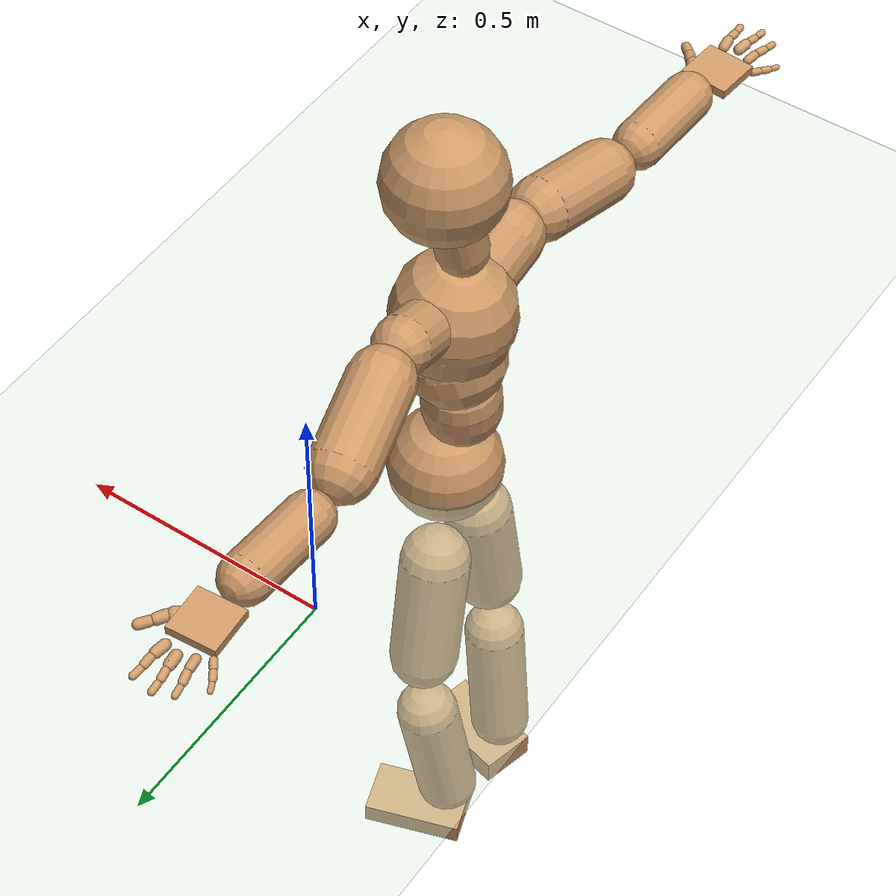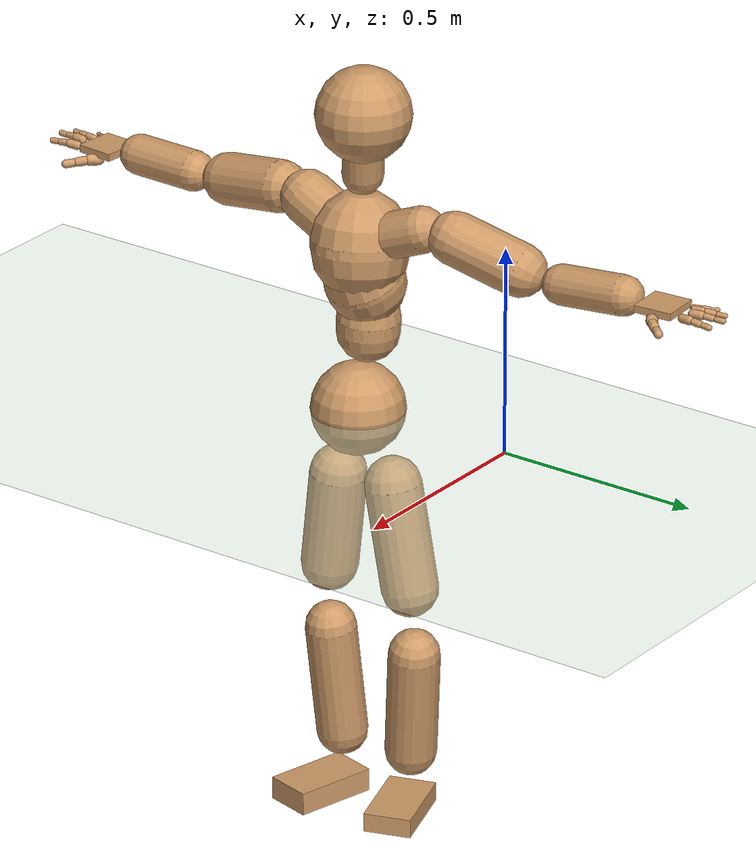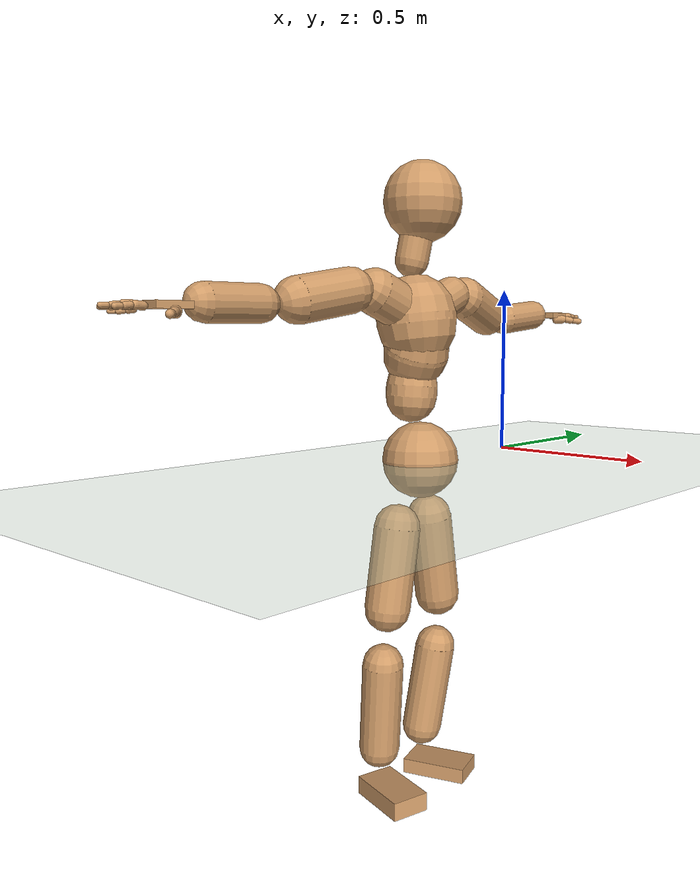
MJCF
<mujoco model="humanoid">
  <compiler coordinate="local" angle="radian"/>
  <default>
    <joint damping="0.0" armature="0.01" stiffness="0.0" limited="true"/>
    <geom conaffinity="1" condim="3" contype="7" margin="0.001" rgba="0.8 0.6 .4 1"/>
  </default>
  <asset>
    <texture type="skybox" builtin="gradient" rgb1=".4 .5 .6" rgb2="0 0 0" width="100" height="100"/>
    <texture builtin="flat" height="1278" mark="cross" markrgb="1 1 1" name="texgeom" random="0.01" rgb1="0.8 0.6 0.4" rgb2="0.8 0.6 0.4" type="cube" width="127"/>
    <texture builtin="checker" height="100" name="texplane" rgb1="0 0 0" rgb2="0.8 0.8 0.8" type="2d" width="100"/>
    <material name="MatPlane" reflectance="0.5" shininess="1" specular="1" texrepeat="60 60" texture="texplane"/>
    <material name="geom" texture="texgeom" texuniform="true"/>
  </asset>
  <worldbody>
    <light cutoff="100" diffuse="1 1 1" dir="-0 0 -1.3" directional="true" exponent="1" pos="0 0 1.3" specular=".1 .1 .1"/>
    <geom conaffinity="1" condim="3" name="floor" pos="0 0 0" rgba="0.8 0.9 0.8 1" size="100 100 .2" type="plane" material="MatPlane"/>
    <body name="Pelvis" pos="0.0012 -0.4081 0.0047">
      <freejoint name="Pelvis"/>
      <geom type="sphere" contype="1" conaffinity="1" density="500" size="0.1114" pos="0.0000 0.0000 0.0000" name="Pelvis"/>
      <body name="L_Hip" pos="-0.0295 0.0615 -0.1012">
        <joint name="L_Hip_x" type="hinge" pos="0 0 0" axis="1 0 0" stiffness="800" damping="80" armature="0.02" range="-180.0000 180.0000"/>
        <joint name="L_Hip_y" type="hinge" pos="0 0 0" axis="0 1 0" stiffness="800" damping="80" armature="0.02" range="-180.0000 180.0000"/>
        <joint name="L_Hip_z" type="hinge" pos="0 0 0" axis="0 0 1" stiffness="800" damping="80" armature="0.02" range="-180.0000 180.0000"/>
        <geom type="capsule" contype="1" conaffinity="1" density="500" fromto="-0.0015 0.0148 -0.0844 -0.0060 0.0593 -0.3377" size="0.0677" name="L_Hip"/>
        <body name="L_Knee" pos="-0.0075 0.0742 -0.4221">
          <joint name="L_Knee_x" type="hinge" pos="0 0 0" axis="1 0 0" stiffness="800" damping="80" armature="0.02" range="-180.0000 180.0000"/>
          <joint name="L_Knee_y" type="hinge" pos="0 0 0" axis="0 1 0" stiffness="800" damping="80" armature="0.02" range="-180.0000 180.0000"/>
          <joint name="L_Knee_z" type="hinge" pos="0 0 0" axis="0 0 1" stiffness="800" damping="80" armature="0.02" range="-180.0000 180.0000"/>
          <geom type="capsule" contype="1" conaffinity="1" density="500" fromto="-0.0098 -0.0102 -0.0896 -0.0394 -0.0407 -0.3582" size="0.0615" name="L_Knee"/>
          <body name="L_Ankle" pos="-0.0492 -0.0509 -0.4478">
            <joint name="L_Ankle_x" type="hinge" pos="0 0 0" axis="1 0 0" stiffness="800" damping="80" armature="0.02" range="-180.0000 180.0000"/>
            <joint name="L_Ankle_y" type="hinge" pos="0 0 0" axis="0 1 0" stiffness="800" damping="80" armature="0.02" range="-180.0000 180.0000"/>
            <joint name="L_Ankle_z" type="hinge" pos="0 0 0" axis="0 0 1" stiffness="800" damping="80" armature="0.02" range="-180.0000 180.0000"/>
            <geom type="box" contype="1" conaffinity="1" density="500" pos="0.0721 0.0240 -0.0319" size="0.1006 0.0572 0.023" quat="0.9871 0.0000 0.0000 0.1601" name="L_Ankle"/>
            <body name="L_Toe" pos="0.1443 0.048 -0.0637">
              <joint name="L_Toe_x" type="hinge" pos="0 0 0" axis="1 0 0" stiffness="500" damping="50" armature="0.02" range="-180.0000 180.0000"/>
              <joint name="L_Toe_y" type="hinge" pos="0 0 0" axis="0 1 0" stiffness="500" damping="50" armature="0.02" range="-180.0000 180.0000"/>
              <joint name="L_Toe_z" type="hinge" pos="0 0 0" axis="0 0 1" stiffness="500" damping="50" armature="0.02" range="-180.0000 180.0000"/>
              <geom type="box" contype="1" conaffinity="1" density="500" pos="0.0000 0.0000 0.0317" size="0.0011 0.0027 0.0011" quat="0.9864 0.0000 0.0000 0.1641" name="L_Toe"/>
            </body>
          </body>
        </body>
      </body>
      <body name="R_Hip" pos="-0.0209 -0.0639 -0.1122">
        <joint name="R_Hip_x" type="hinge" pos="0 0 0" axis="1 0 0" stiffness="800" damping="80" armature="0.02" range="-180.0000 180.0000"/>
        <joint name="R_Hip_y" type="hinge" pos="0 0 0" axis="0 1 0" stiffness="800" damping="80" armature="0.02" range="-180.0000 180.0000"/>
        <joint name="R_Hip_z" type="hinge" pos="0 0 0" axis="0 0 1" stiffness="800" damping="80" armature="0.02" range="-180.0000 180.0000"/>
        <geom type="capsule" contype="1" conaffinity="1" density="500" fromto="-0.0033 -0.0110 -0.0808 -0.0133 -0.0442 -0.3233" size="0.0677" name="R_Hip"/>
        <body name="R_Knee" pos="-0.0167 -0.0552 -0.4042">
          <joint name="R_Knee_x" type="hinge" pos="0 0 0" axis="1 0 0" stiffness="800" damping="80" armature="0.02" range="-180.0000 180.0000"/>
          <joint name="R_Knee_y" type="hinge" pos="0 0 0" axis="0 1 0" stiffness="800" damping="80" armature="0.02" range="-180.0000 180.0000"/>
          <joint name="R_Knee_z" type="hinge" pos="0 0 0" axis="0 0 1" stiffness="800" damping="80" armature="0.02" range="-180.0000 180.0000"/>
          <geom type="capsule" contype="1" conaffinity="1" density="500" fromto="-0.0096 0.0038 -0.0925 -0.0384 0.0153 -0.3698" size="0.0614" name="R_Knee"/>
          <body name="R_Ankle" pos="-0.048 0.0191 -0.4623">
            <joint name="R_Ankle_x" type="hinge" pos="0 0 0" axis="1 0 0" stiffness="800" damping="80" armature="0.02" range="-180.0000 180.0000"/>
            <joint name="R_Ankle_y" type="hinge" pos="0 0 0" axis="0 1 0" stiffness="800" damping="80" armature="0.02" range="-180.0000 180.0000"/>
            <joint name="R_Ankle_z" type="hinge" pos="0 0 0" axis="0 0 1" stiffness="800" damping="80" armature="0.02" range="-180.0000 180.0000"/>
            <geom type="box" contype="1" conaffinity="1" density="500" pos="0.0755 -0.0188 -0.0313" size="0.1006 0.0572 0.0278" quat="0.9926 0.0000 0.0000 -0.1214" name="R_Ankle"/>
            <body name="R_Toe" pos="0.1511 -0.0375 -0.0625">
              <joint name="R_Toe_x" type="hinge" pos="0 0 0" axis="1 0 0" stiffness="500" damping="50" armature="0.02" range="-180.0000 180.0000"/>
              <joint name="R_Toe_y" type="hinge" pos="0 0 0" axis="0 1 0" stiffness="500" damping="50" armature="0.02" range="-180.0000 180.0000"/>
              <joint name="R_Toe_z" type="hinge" pos="0 0 0" axis="0 0 1" stiffness="500" damping="50" armature="0.02" range="-180.0000 180.0000"/>
              <geom type="box" contype="1" conaffinity="1" density="500" pos="0.0000 0.0000 0.0263" size="0.0011 0.0027 0.0011" quat="0.9935 0.0000 0.0000 -0.1138" name="R_Toe"/>
            </body>
          </body>
        </body>
      </body>
      <body name="Torso" pos="-0.0377 -0.0024 0.1174">
        <joint name="Torso_x" type="hinge" pos="0 0 0" axis="1 0 0" stiffness="1000" damping="100" armature="0.02" range="-180.0000 180.0000"/>
        <joint name="Torso_y" type="hinge" pos="0 0 0" axis="0 1 0" stiffness="1000" damping="100" armature="0.02" range="-180.0000 180.0000"/>
        <joint name="Torso_z" type="hinge" pos="0 0 0" axis="0 0 1" stiffness="1000" damping="100" armature="0.02" range="-180.0000 180.0000"/>
        <geom type="capsule" contype="1" conaffinity="1" density="500" fromto="0.0028 0.0067 0.0974 0.0019 0.0045 0.0649" size="0.075" name="Torso"/>
        <body name="Spine" pos="0.0046 0.0112 0.1624">
          <joint name="Spine_x" type="hinge" pos="0 0 0" axis="1 0 0" stiffness="1000" damping="100" armature="0.02" range="-180.0000 180.0000"/>
          <joint name="Spine_y" type="hinge" pos="0 0 0" axis="0 1 0" stiffness="1000" damping="100" armature="0.02" range="-180.0000 180.0000"/>
          <joint name="Spine_z" type="hinge" pos="0 0 0" axis="0 0 1" stiffness="1000" damping="100" armature="0.02" range="-180.0000 180.0000"/>
          <geom type="capsule" contype="1" conaffinity="1" density="500" fromto="0.0166 -0.0049 0.0384 0.0110 -0.0033 0.0256" size="0.0951" name="Spine"/>
          <body name="Chest" pos="0.0276 -0.0082 0.064">
            <joint name="Chest_x" type="hinge" pos="0 0 0" axis="1 0 0" stiffness="1000" damping="100" armature="0.02" range="-180.0000 180.0000"/>
            <joint name="Chest_y" type="hinge" pos="0 0 0" axis="0 1 0" stiffness="1000" damping="100" armature="0.02" range="-180.0000 180.0000"/>
            <joint name="Chest_z" type="hinge" pos="0 0 0" axis="0 0 1" stiffness="1000" damping="100" armature="0.02" range="-180.0000 180.0000"/>
            <geom type="capsule" contype="1" conaffinity="1" density="500" fromto="-0.0071 -0.0032 0.0700 -0.0047 -0.0021 0.0467" size="0.1154" name="Chest"/>
            <body name="Neck" pos="-0.0263 -0.0108 0.1829">
              <joint name="Neck_x" type="hinge" pos="0 0 0" axis="1 0 0" stiffness="500" damping="50" armature="0.02" range="-180.0000 180.0000"/>
              <joint name="Neck_y" type="hinge" pos="0 0 0" axis="0 1 0" stiffness="500" damping="50" armature="0.02" range="-180.0000 180.0000"/>
              <joint name="Neck_z" type="hinge" pos="0 0 0" axis="0 0 1" stiffness="500" damping="50" armature="0.02" range="-180.0000 180.0000"/>
              <geom type="capsule" contype="1" conaffinity="1" density="500" fromto="0.0059 0.0049 0.0396 0.0237 0.0196 0.1585" size="0.0481" name="Neck"/>
              <body name="Head" pos="0.0296 0.0245 0.1981">
                <joint name="Head_x" type="hinge" pos="0 0 0" axis="1 0 0" stiffness="500" damping="50" armature="0.02" range="-180.0000 180.0000"/>
                <joint name="Head_y" type="hinge" pos="0 0 0" axis="0 1 0" stiffness="500" damping="50" armature="0.02" range="-180.0000 180.0000"/>
                <joint name="Head_z" type="hinge" pos="0 0 0" axis="0 0 1" stiffness="500" damping="50" armature="0.02" range="-180.0000 180.0000"/>
                <geom type="sphere" contype="1" conaffinity="1" density="500" size="0.1116" pos="0.0000 0.0000 0.0000" name="Head"/>
              </body>
            </body>
            <body name="L_Thorax" pos="-0.0028 0.0438 0.0833">
              <joint name="L_Thorax_x" type="hinge" pos="0 0 0" axis="1 0 0" stiffness="500" damping="50" armature="0.02" range="-180.0000 180.0000"/>
              <joint name="L_Thorax_y" type="hinge" pos="0 0 0" axis="0 1 0" stiffness="500" damping="50" armature="0.02" range="-180.0000 180.0000"/>
              <joint name="L_Thorax_z" type="hinge" pos="0 0 0" axis="0 0 1" stiffness="500" damping="50" armature="0.02" range="-180.0000 180.0000"/>
              <geom type="capsule" contype="1" conaffinity="1" density="500" fromto="-0.0030 0.0296 0.0118 -0.0120 0.1186 0.0470" size="0.0551" name="L_Thorax"/>
              <body name="L_Shoulder" pos="-0.015 0.1482 0.0588">
                <joint name="L_Shoulder_x" type="hinge" pos="0 0 0" axis="1 0 0" stiffness="500" damping="50" armature="0.02" range="-180.0000 180.0000"/>
                <joint name="L_Shoulder_y" type="hinge" pos="0 0 0" axis="0 1 0" stiffness="500" damping="50" armature="0.02" range="-180.0000 180.0000"/>
                <joint name="L_Shoulder_z" type="hinge" pos="0 0 0" axis="0 0 1" stiffness="500" damping="50" armature="0.02" range="-180.0000 180.0000"/>
                <geom type="capsule" contype="1" conaffinity="1" density="500" fromto="-0.0109 0.0522 -0.0166 -0.0436 0.2088 -0.0666" size="0.0625" name="L_Shoulder"/>
                <body name="L_Elbow" pos="-0.0546 0.261 -0.0832">
                  <joint name="L_Elbow_x" type="hinge" pos="0 0 0" axis="1 0 0" stiffness="500" damping="50" armature="0.02" range="-720.0000 720.0000"/>
                  <joint name="L_Elbow_y" type="hinge" pos="0 0 0" axis="0 1 0" stiffness="500" damping="50" armature="0.02" range="-720.0000 720.0000"/>
                  <joint name="L_Elbow_z" type="hinge" pos="0 0 0" axis="0 0 1" stiffness="500" damping="50" armature="0.02" range="-720.0000 720.0000"/>
                  <geom type="capsule" contype="1" conaffinity="1" density="500" fromto="0.0005 0.0553 0.0056 0.0019 0.2213 0.0223" size="0.0474" name="L_Elbow"/>
                  <body name="L_Wrist" pos="0.0024 0.2766 0.0279">
                    <joint name="L_Wrist_x" type="hinge" pos="0 0 0" axis="1 0 0" stiffness="300" damping="30" armature="0.02" range="-180.0000 180.0000"/>
                    <joint name="L_Wrist_y" type="hinge" pos="0 0 0" axis="0 1 0" stiffness="300" damping="30" armature="0.02" range="-180.0000 180.0000"/>
                    <joint name="L_Wrist_z" type="hinge" pos="0 0 0" axis="0 0 1" stiffness="300" damping="30" armature="0.02" range="-180.0000 180.0000"/>
                    <geom type="box" contype="1" conaffinity="1" density="500" pos="-0.0034 0.0471 -0.0057" size="0.0464 0.0472 0.0088" quat="0.7322 0.0000 0.0000 -0.6811" name="L_Wrist"/>
                    <body name="L_Index1" pos="0.0225 0.1109 -0.0083">
                      <joint name="L_Index1_x" type="hinge" pos="0 0 0" axis="1 0 0" stiffness="100" damping="10" armature="0.02" range="-180.0000 180.0000"/>
                      <joint name="L_Index1_y" type="hinge" pos="0 0 0" axis="0 1 0" stiffness="100" damping="10" armature="0.02" range="-180.0000 180.0000"/>
                      <joint name="L_Index1_z" type="hinge" pos="0 0 0" axis="0 0 1" stiffness="100" damping="10" armature="0.02" range="-180.0000 180.0000"/>
                      <geom type="capsule" contype="1" conaffinity="1" density="500" fromto="0.0008 0.0069 0.0004 0.0033 0.0278 0.0016" size="0.0103" name="L_Index1"/>
                      <body name="L_Index2" pos="0.0041 0.0347 0.002">
                        <joint name="L_Index2_x" type="hinge" pos="0 0 0" axis="1 0 0" stiffness="100" damping="10" armature="0.02" range="-180.0000 180.0000"/>
                        <joint name="L_Index2_y" type="hinge" pos="0 0 0" axis="0 1 0" stiffness="100" damping="10" armature="0.02" range="-180.0000 180.0000"/>
                        <joint name="L_Index2_z" type="hinge" pos="0 0 0" axis="0 0 1" stiffness="100" damping="10" armature="0.02" range="-180.0000 180.0000"/>
                        <geom type="capsule" contype="1" conaffinity="1" density="500" fromto="-0.0000 0.0049 -0.0006 -0.0000 0.0195 -0.0023" size="0.0083" name="L_Index2"/>
                        <body name="L_Index3" pos="0 0.0244 -0.0029">
                          <joint name="L_Index3_x" type="hinge" pos="0 0 0" axis="1 0 0" stiffness="100" damping="10" armature="0.02" range="-180.0000 180.0000"/>
                          <joint name="L_Index3_y" type="hinge" pos="0 0 0" axis="0 1 0" stiffness="100" damping="10" armature="0.02" range="-180.0000 180.0000"/>
                          <joint name="L_Index3_z" type="hinge" pos="0 0 0" axis="0 0 1" stiffness="100" damping="10" armature="0.02" range="-180.0000 180.0000"/>
                          <geom type="capsule" contype="1" conaffinity="1" density="500" fromto="0.0004 0.0053 -0.0002 0.0016 0.0211 -0.0007" size="0.0071" name="L_Index3"/>
                        </body>
                      </body>
                    </body>
                    <body name="L_Middle1" pos="-0.0042 0.1192 -0.005">
                      <joint name="L_Middle1_x" type="hinge" pos="0 0 0" axis="1 0 0" stiffness="100" damping="10" armature="0.02" range="-180.0000 180.0000"/>
                      <joint name="L_Middle1_y" type="hinge" pos="0 0 0" axis="0 1 0" stiffness="100" damping="10" armature="0.02" range="-180.0000 180.0000"/>
                      <joint name="L_Middle1_z" type="hinge" pos="0 0 0" axis="0 0 1" stiffness="100" damping="10" armature="0.02" range="-180.0000 180.0000"/>
                      <geom type="capsule" contype="1" conaffinity="1" density="500" fromto="-0.0009 0.0066 0.0001 -0.0036 0.0264 0.0005" size="0.0105" name="L_Middle1"/>
                      <body name="L_Middle2" pos="-0.0045 0.033 0.0007">
                        <joint name="L_Middle2_x" type="hinge" pos="0 0 0" axis="1 0 0" stiffness="100" damping="10" armature="0.02" range="-180.0000 180.0000"/>
                        <joint name="L_Middle2_y" type="hinge" pos="0 0 0" axis="0 1 0" stiffness="100" damping="10" armature="0.02" range="-180.0000 180.0000"/>
                        <joint name="L_Middle2_z" type="hinge" pos="0 0 0" axis="0 0 1" stiffness="100" damping="10" armature="0.02" range="-180.0000 180.0000"/>
                        <geom type="capsule" contype="1" conaffinity="1" density="500" fromto="-0.0009 0.0051 -0.0005 -0.0036 0.0202 -0.0021" size="0.0077" name="L_Middle2"/>
                        <body name="L_Middle3" pos="-0.0045 0.0253 -0.0027">
                          <joint name="L_Middle3_x" type="hinge" pos="0 0 0" axis="1 0 0" stiffness="100" damping="10" armature="0.02" range="-180.0000 180.0000"/>
                          <joint name="L_Middle3_y" type="hinge" pos="0 0 0" axis="0 1 0" stiffness="100" damping="10" armature="0.02" range="-180.0000 180.0000"/>
                          <joint name="L_Middle3_z" type="hinge" pos="0 0 0" axis="0 0 1" stiffness="100" damping="10" armature="0.02" range="-180.0000 180.0000"/>
                          <geom type="capsule" contype="1" conaffinity="1" density="500" fromto="-0.0005 0.0055 -0.0001 -0.0020 0.0218 -0.0005" size="0.0067" name="L_Middle3"/>
                        </body>
                      </body>
                    </body>
                    <body name="L_Pinky1" pos="-0.0507 0.0915 -0.0145">
                      <joint name="L_Pinky1_x" type="hinge" pos="0 0 0" axis="1 0 0" stiffness="100" damping="10" armature="0.02" range="-180.0000 180.0000"/>
                      <joint name="L_Pinky1_y" type="hinge" pos="0 0 0" axis="0 1 0" stiffness="100" damping="10" armature="0.02" range="-180.0000 180.0000"/>
                      <joint name="L_Pinky1_z" type="hinge" pos="0 0 0" axis="0 0 1" stiffness="100" damping="10" armature="0.02" range="-180.0000 180.0000"/>
                      <geom type="capsule" contype="1" conaffinity="1" density="500" fromto="-0.0025 0.0035 -0.0004 -0.0099 0.0140 -0.0016" size="0.0074" name="L_Pinky1"/>
                      <body name="L_Pinky2" pos="-0.0124 0.0174 -0.002">
                        <joint name="L_Pinky2_x" type="hinge" pos="0 0 0" axis="1 0 0" stiffness="100" damping="10" armature="0.02" range="-180.0000 180.0000"/>
                        <joint name="L_Pinky2_y" type="hinge" pos="0 0 0" axis="0 1 0" stiffness="100" damping="10" armature="0.02" range="-180.0000 180.0000"/>
                        <joint name="L_Pinky2_z" type="hinge" pos="0 0 0" axis="0 0 1" stiffness="100" damping="10" armature="0.02" range="-180.0000 180.0000"/>
                        <geom type="capsule" contype="1" conaffinity="1" density="500" fromto="-0.0023 0.0034 -0.0004 -0.0092 0.0138 -0.0018" size="0.007" name="L_Pinky2"/>
                        <body name="L_Pinky3" pos="-0.0115 0.0172 -0.0022">
                          <joint name="L_Pinky3_x" type="hinge" pos="0 0 0" axis="1 0 0" stiffness="100" damping="10" armature="0.02" range="-180.0000 180.0000"/>
                          <joint name="L_Pinky3_y" type="hinge" pos="0 0 0" axis="0 1 0" stiffness="100" damping="10" armature="0.02" range="-180.0000 180.0000"/>
                          <joint name="L_Pinky3_z" type="hinge" pos="0 0 0" axis="0 0 1" stiffness="100" damping="10" armature="0.02" range="-180.0000 180.0000"/>
                          <geom type="capsule" contype="1" conaffinity="1" density="500" fromto="-0.0019 0.0038 -0.0000 -0.0076 0.0154 -0.0002" size="0.0053" name="L_Pinky3"/>
                        </body>
                      </body>
                    </body>
                    <body name="L_Ring1" pos="-0.0315 0.1062 -0.0081">
                      <joint name="L_Ring1_x" type="hinge" pos="0 0 0" axis="1 0 0" stiffness="100" damping="10" armature="0.02" range="-180.0000 180.0000"/>
                      <joint name="L_Ring1_y" type="hinge" pos="0 0 0" axis="0 1 0" stiffness="100" damping="10" armature="0.02" range="-180.0000 180.0000"/>
                      <joint name="L_Ring1_z" type="hinge" pos="0 0 0" axis="0 0 1" stiffness="100" damping="10" armature="0.02" range="-180.0000 180.0000"/>
                      <geom type="capsule" contype="1" conaffinity="1" density="500" fromto="-0.0010 0.0062 0.0002 -0.0040 0.0246 0.0007" size="0.0089" name="L_Ring1"/>
                      <body name="L_Ring2" pos="-0.005 0.0308 0.0008">
                        <joint name="L_Ring2_x" type="hinge" pos="0 0 0" axis="1 0 0" stiffness="100" damping="10" armature="0.02" range="-180.0000 180.0000"/>
                        <joint name="L_Ring2_y" type="hinge" pos="0 0 0" axis="0 1 0" stiffness="100" damping="10" armature="0.02" range="-180.0000 180.0000"/>
                        <joint name="L_Ring2_z" type="hinge" pos="0 0 0" axis="0 0 1" stiffness="100" damping="10" armature="0.02" range="-180.0000 180.0000"/>
                        <geom type="capsule" contype="1" conaffinity="1" density="500" fromto="-0.0014 0.0050 -0.0005 -0.0056 0.0199 -0.0020" size="0.0081" name="L_Ring2"/>
                        <body name="L_Ring3" pos="-0.007 0.0248 -0.0025">
                          <joint name="L_Ring3_x" type="hinge" pos="0 0 0" axis="1 0 0" stiffness="100" damping="10" armature="0.02" range="-180.0000 180.0000"/>
                          <joint name="L_Ring3_y" type="hinge" pos="0 0 0" axis="0 1 0" stiffness="100" damping="10" armature="0.02" range="-180.0000 180.0000"/>
                          <joint name="L_Ring3_z" type="hinge" pos="0 0 0" axis="0 0 1" stiffness="100" damping="10" armature="0.02" range="-180.0000 180.0000"/>
                          <geom type="capsule" contype="1" conaffinity="1" density="500" fromto="-0.0010 0.0054 -0.0001 -0.0040 0.0215 -0.0004" size="0.0063" name="L_Ring3"/>
                        </body>
                      </body>
                    </body>
                    <body name="L_Thumb1" pos="0.0298 0.0427 -0.0214">
                      <joint name="L_Thumb1_x" type="hinge" pos="0 0 0" axis="1 0 0" stiffness="100" damping="10" armature="0.02" range="-180.0000 180.0000"/>
                      <joint name="L_Thumb1_y" type="hinge" pos="0 0 0" axis="0 1 0" stiffness="100" damping="10" armature="0.02" range="-180.0000 180.0000"/>
                      <joint name="L_Thumb1_z" type="hinge" pos="0 0 0" axis="0 0 1" stiffness="100" damping="10" armature="0.02" range="-180.0000 180.0000"/>
                      <geom type="capsule" contype="1" conaffinity="1" density="500" fromto="0.0058 0.0035 0.0005 0.0233 0.0141 0.0020" size="0.014" name="L_Thumb1"/>
                      <body name="L_Thumb2" pos="0.0291 0.0176 0.0024">
                        <joint name="L_Thumb2_x" type="hinge" pos="0 0 0" axis="1 0 0" stiffness="100" damping="10" armature="0.02" range="-180.0000 180.0000"/>
                        <joint name="L_Thumb2_y" type="hinge" pos="0 0 0" axis="0 1 0" stiffness="100" damping="10" armature="0.02" range="-180.0000 180.0000"/>
                        <joint name="L_Thumb2_z" type="hinge" pos="0 0 0" axis="0 0 1" stiffness="100" damping="10" armature="0.02" range="-180.0000 180.0000"/>
                        <geom type="capsule" contype="1" conaffinity="1" density="500" fromto="0.0035 0.0044 -0.0010 0.0142 0.0175 -0.0040" size="0.0111" name="L_Thumb2"/>
                        <body name="L_Thumb3" pos="0.0177 0.0218 -0.005">
                          <joint name="L_Thumb3_x" type="hinge" pos="0 0 0" axis="1 0 0" stiffness="100" damping="10" armature="0.02" range="-180.0000 180.0000"/>
                          <joint name="L_Thumb3_y" type="hinge" pos="0 0 0" axis="0 1 0" stiffness="100" damping="10" armature="0.02" range="-180.0000 180.0000"/>
                          <joint name="L_Thumb3_z" type="hinge" pos="0 0 0" axis="0 0 1" stiffness="100" damping="10" armature="0.02" range="-180.0000 180.0000"/>
                          <geom type="capsule" contype="1" conaffinity="1" density="500" fromto="0.0039 0.0048 -0.0006 0.0158 0.0191 -0.0024" size="0.0098" name="L_Thumb3"/>
                        </body>
                      </body>
                    </body>
                  </body>
                </body>
              </body>
            </body>
            <body name="R_Thorax" pos="-0.0063 -0.049 0.0837">
              <joint name="R_Thorax_x" type="hinge" pos="0 0 0" axis="1 0 0" stiffness="500" damping="50" armature="0.02" range="-180.0000 180.0000"/>
              <joint name="R_Thorax_y" type="hinge" pos="0 0 0" axis="0 1 0" stiffness="500" damping="50" armature="0.02" range="-180.0000 180.0000"/>
              <joint name="R_Thorax_z" type="hinge" pos="0 0 0" axis="0 0 1" stiffness="500" damping="50" armature="0.02" range="-180.0000 180.0000"/>
              <geom type="capsule" contype="1" conaffinity="1" density="500" fromto="-0.0028 -0.0274 0.0117 -0.0112 -0.1097 0.0467" size="0.0645" name="R_Thorax"/>
              <body name="R_Shoulder" pos="-0.014 -0.1372 0.0583">
                <joint name="R_Shoulder_x" type="hinge" pos="0 0 0" axis="1 0 0" stiffness="500" damping="50" armature="0.02" range="-180.0000 180.0000"/>
                <joint name="R_Shoulder_y" type="hinge" pos="0 0 0" axis="0 1 0" stiffness="500" damping="50" armature="0.02" range="-180.0000 180.0000"/>
                <joint name="R_Shoulder_z" type="hinge" pos="0 0 0" axis="0 0 1" stiffness="500" damping="50" armature="0.02" range="-180.0000 180.0000"/>
                <geom type="capsule" contype="1" conaffinity="1" density="500" fromto="-0.0077 -0.0558 -0.0099 -0.0306 -0.2231 -0.0397" size="0.0618" name="R_Shoulder"/>
                <body name="R_Elbow" pos="-0.0383 -0.2789 -0.0496">
                  <joint name="R_Elbow_x" type="hinge" pos="0 0 0" axis="1 0 0" stiffness="500" damping="50" armature="0.02" range="-720.0000 720.0000"/>
                  <joint name="R_Elbow_y" type="hinge" pos="0 0 0" axis="0 1 0" stiffness="500" damping="50" armature="0.02" range="-720.0000 720.0000"/>
                  <joint name="R_Elbow_z" type="hinge" pos="0 0 0" axis="0 0 1" stiffness="500" damping="50" armature="0.02" range="-720.0000 720.0000"/>
                  <geom type="capsule" contype="1" conaffinity="1" density="500" fromto="-0.0021 -0.0538 -0.0004 -0.0084 -0.2151 -0.0014" size="0.0485" name="R_Elbow"/>
                  <body name="R_Wrist" pos="-0.0105 -0.2689 -0.0018">
                    <joint name="R_Wrist_x" type="hinge" pos="0 0 0" axis="1 0 0" stiffness="300" damping="30" armature="0.02" range="-180.0000 180.0000"/>
                    <joint name="R_Wrist_y" type="hinge" pos="0 0 0" axis="0 1 0" stiffness="300" damping="30" armature="0.02" range="-180.0000 180.0000"/>
                    <joint name="R_Wrist_z" type="hinge" pos="0 0 0" axis="0 0 1" stiffness="300" damping="30" armature="0.02" range="-180.0000 180.0000"/>
                    <geom type="box" contype="1" conaffinity="1" density="500" pos="-0.0038 -0.0467 -0.0077" size="0.0464 0.0484 0.009" quat="0.7352 0.0000 0.0000 0.6779" name="R_Wrist"/>
                    <body name="R_Index1" pos="0.0217 -0.1102 -0.0122">
                      <joint name="R_Index1_x" type="hinge" pos="0 0 0" axis="1 0 0" stiffness="100" damping="10" armature="0.02" range="-180.0000 180.0000"/>
                      <joint name="R_Index1_y" type="hinge" pos="0 0 0" axis="0 1 0" stiffness="100" damping="10" armature="0.02" range="-180.0000 180.0000"/>
                      <joint name="R_Index1_z" type="hinge" pos="0 0 0" axis="0 0 1" stiffness="100" damping="10" armature="0.02" range="-180.0000 180.0000"/>
                      <geom type="capsule" contype="1" conaffinity="1" density="500" fromto="0.0008 -0.0069 0.0004 0.0033 -0.0278 0.0016" size="0.0103" name="R_Index1"/>
                      <body name="R_Index2" pos="0.0041 -0.0347 0.002">
                        <joint name="R_Index2_x" type="hinge" pos="0 0 0" axis="1 0 0" stiffness="100" damping="10" armature="0.02" range="-180.0000 180.0000"/>
                        <joint name="R_Index2_y" type="hinge" pos="0 0 0" axis="0 1 0" stiffness="100" damping="10" armature="0.02" range="-180.0000 180.0000"/>
                        <joint name="R_Index2_z" type="hinge" pos="0 0 0" axis="0 0 1" stiffness="100" damping="10" armature="0.02" range="-180.0000 180.0000"/>
                        <geom type="capsule" contype="1" conaffinity="1" density="500" fromto="-0.0000 -0.0049 -0.0006 -0.0000 -0.0195 -0.0023" size="0.0083" name="R_Index2"/>
                        <body name="R_Index3" pos="0 -0.0244 -0.0029">
                          <joint name="R_Index3_x" type="hinge" pos="0 0 0" axis="1 0 0" stiffness="100" damping="10" armature="0.02" range="-180.0000 180.0000"/>
                          <joint name="R_Index3_y" type="hinge" pos="0 0 0" axis="0 1 0" stiffness="100" damping="10" armature="0.02" range="-180.0000 180.0000"/>
                          <joint name="R_Index3_z" type="hinge" pos="0 0 0" axis="0 0 1" stiffness="100" damping="10" armature="0.02" range="-180.0000 180.0000"/>
                          <geom type="capsule" contype="1" conaffinity="1" density="500" fromto="0.0004 -0.0045 -0.0002 0.0016 -0.0179 -0.0007" size="0.0074" name="R_Index3"/>
                        </body>
                      </body>
                    </body>
                    <body name="R_Middle1" pos="-0.005 -0.1186 -0.0089">
                      <joint name="R_Middle1_x" type="hinge" pos="0 0 0" axis="1 0 0" stiffness="100" damping="10" armature="0.02" range="-180.0000 180.0000"/>
                      <joint name="R_Middle1_y" type="hinge" pos="0 0 0" axis="0 1 0" stiffness="100" damping="10" armature="0.02" range="-180.0000 180.0000"/>
                      <joint name="R_Middle1_z" type="hinge" pos="0 0 0" axis="0 0 1" stiffness="100" damping="10" armature="0.02" range="-180.0000 180.0000"/>
                      <geom type="capsule" contype="1" conaffinity="1" density="500" fromto="-0.0009 -0.0066 0.0001 -0.0036 -0.0264 0.0005" size="0.0105" name="R_Middle1"/>
                      <body name="R_Middle2" pos="-0.0045 -0.033 0.0007">
                        <joint name="R_Middle2_x" type="hinge" pos="0 0 0" axis="1 0 0" stiffness="100" damping="10" armature="0.02" range="-180.0000 180.0000"/>
                        <joint name="R_Middle2_y" type="hinge" pos="0 0 0" axis="0 1 0" stiffness="100" damping="10" armature="0.02" range="-180.0000 180.0000"/>
                        <joint name="R_Middle2_z" type="hinge" pos="0 0 0" axis="0 0 1" stiffness="100" damping="10" armature="0.02" range="-180.0000 180.0000"/>
                        <geom type="capsule" contype="1" conaffinity="1" density="500" fromto="-0.0009 -0.0051 -0.0005 -0.0036 -0.0202 -0.0021" size="0.0077" name="R_Middle2"/>
                        <body name="R_Middle3" pos="-0.0045 -0.0253 -0.0027">
                          <joint name="R_Middle3_x" type="hinge" pos="0 0 0" axis="1 0 0" stiffness="100" damping="10" armature="0.02" range="-180.0000 180.0000"/>
                          <joint name="R_Middle3_y" type="hinge" pos="0 0 0" axis="0 1 0" stiffness="100" damping="10" armature="0.02" range="-180.0000 180.0000"/>
                          <joint name="R_Middle3_z" type="hinge" pos="0 0 0" axis="0 0 1" stiffness="100" damping="10" armature="0.02" range="-180.0000 180.0000"/>
                          <geom type="capsule" contype="1" conaffinity="1" density="500" fromto="-0.0005 -0.0047 -0.0001 -0.0020 -0.0186 -0.0005" size="0.007" name="R_Middle3"/>
                        </body>
                      </body>
                    </body>
                    <body name="R_Pinky1" pos="-0.0515 -0.0908 -0.0184">
                      <joint name="R_Pinky1_x" type="hinge" pos="0 0 0" axis="1 0 0" stiffness="100" damping="10" armature="0.02" range="-180.0000 180.0000"/>
                      <joint name="R_Pinky1_y" type="hinge" pos="0 0 0" axis="0 1 0" stiffness="100" damping="10" armature="0.02" range="-180.0000 180.0000"/>
                      <joint name="R_Pinky1_z" type="hinge" pos="0 0 0" axis="0 0 1" stiffness="100" damping="10" armature="0.02" range="-180.0000 180.0000"/>
                      <geom type="capsule" contype="1" conaffinity="1" density="500" fromto="-0.0025 -0.0035 -0.0004 -0.0099 -0.0140 -0.0016" size="0.0074" name="R_Pinky1"/>
                      <body name="R_Pinky2" pos="-0.0124 -0.0174 -0.002">
                        <joint name="R_Pinky2_x" type="hinge" pos="0 0 0" axis="1 0 0" stiffness="100" damping="10" armature="0.02" range="-180.0000 180.0000"/>
                        <joint name="R_Pinky2_y" type="hinge" pos="0 0 0" axis="0 1 0" stiffness="100" damping="10" armature="0.02" range="-180.0000 180.0000"/>
                        <joint name="R_Pinky2_z" type="hinge" pos="0 0 0" axis="0 0 1" stiffness="100" damping="10" armature="0.02" range="-180.0000 180.0000"/>
                        <geom type="capsule" contype="1" conaffinity="1" density="500" fromto="-0.0023 -0.0034 -0.0004 -0.0092 -0.0138 -0.0018" size="0.007" name="R_Pinky2"/>
                        <body name="R_Pinky3" pos="-0.0115 -0.0172 -0.0022">
                          <joint name="R_Pinky3_x" type="hinge" pos="0 0 0" axis="1 0 0" stiffness="100" damping="10" armature="0.02" range="-180.0000 180.0000"/>
                          <joint name="R_Pinky3_y" type="hinge" pos="0 0 0" axis="0 1 0" stiffness="100" damping="10" armature="0.02" range="-180.0000 180.0000"/>
                          <joint name="R_Pinky3_z" type="hinge" pos="0 0 0" axis="0 0 1" stiffness="100" damping="10" armature="0.02" range="-180.0000 180.0000"/>
                          <geom type="capsule" contype="1" conaffinity="1" density="500" fromto="-0.0019 -0.0030 -0.0000 -0.0076 -0.0122 -0.0002" size="0.0055" name="R_Pinky3"/>
                        </body>
                      </body>
                    </body>
                    <body name="R_Ring1" pos="-0.0322 -0.1055 -0.012">
                      <joint name="R_Ring1_x" type="hinge" pos="0 0 0" axis="1 0 0" stiffness="100" damping="10" armature="0.02" range="-180.0000 180.0000"/>
                      <joint name="R_Ring1_y" type="hinge" pos="0 0 0" axis="0 1 0" stiffness="100" damping="10" armature="0.02" range="-180.0000 180.0000"/>
                      <joint name="R_Ring1_z" type="hinge" pos="0 0 0" axis="0 0 1" stiffness="100" damping="10" armature="0.02" range="-180.0000 180.0000"/>
                      <geom type="capsule" contype="1" conaffinity="1" density="500" fromto="-0.0010 -0.0062 0.0002 -0.0040 -0.0246 0.0007" size="0.0089" name="R_Ring1"/>
                      <body name="R_Ring2" pos="-0.005 -0.0308 0.0008">
                        <joint name="R_Ring2_x" type="hinge" pos="0 0 0" axis="1 0 0" stiffness="100" damping="10" armature="0.02" range="-180.0000 180.0000"/>
                        <joint name="R_Ring2_y" type="hinge" pos="0 0 0" axis="0 1 0" stiffness="100" damping="10" armature="0.02" range="-180.0000 180.0000"/>
                        <joint name="R_Ring2_z" type="hinge" pos="0 0 0" axis="0 0 1" stiffness="100" damping="10" armature="0.02" range="-180.0000 180.0000"/>
                        <geom type="capsule" contype="1" conaffinity="1" density="500" fromto="-0.0014 -0.0050 -0.0005 -0.0056 -0.0199 -0.0020" size="0.0081" name="R_Ring2"/>
                        <body name="R_Ring3" pos="-0.007 -0.0248 -0.0025">
                          <joint name="R_Ring3_x" type="hinge" pos="0 0 0" axis="1 0 0" stiffness="100" damping="10" armature="0.02" range="-180.0000 180.0000"/>
                          <joint name="R_Ring3_y" type="hinge" pos="0 0 0" axis="0 1 0" stiffness="100" damping="10" armature="0.02" range="-180.0000 180.0000"/>
                          <joint name="R_Ring3_z" type="hinge" pos="0 0 0" axis="0 0 1" stiffness="100" damping="10" armature="0.02" range="-180.0000 180.0000"/>
                          <geom type="capsule" contype="1" conaffinity="1" density="500" fromto="-0.0010 -0.0046 -0.0001 -0.0040 -0.0183 -0.0004" size="0.0066" name="R_Ring3"/>
                        </body>
                      </body>
                    </body>
                    <body name="R_Thumb1" pos="0.0291 -0.0421 -0.0253">
                      <joint name="R_Thumb1_x" type="hinge" pos="0 0 0" axis="1 0 0" stiffness="100" damping="10" armature="0.02" range="-180.0000 180.0000"/>
                      <joint name="R_Thumb1_y" type="hinge" pos="0 0 0" axis="0 1 0" stiffness="100" damping="10" armature="0.02" range="-180.0000 180.0000"/>
                      <joint name="R_Thumb1_z" type="hinge" pos="0 0 0" axis="0 0 1" stiffness="100" damping="10" armature="0.02" range="-180.0000 180.0000"/>
                      <geom type="capsule" contype="1" conaffinity="1" density="500" fromto="0.0058 -0.0035 0.0005 0.0233 -0.0141 0.0020" size="0.014" name="R_Thumb1"/>
                      <body name="R_Thumb2" pos="0.0291 -0.0176 0.0024">
                        <joint name="R_Thumb2_x" type="hinge" pos="0 0 0" axis="1 0 0" stiffness="100" damping="10" armature="0.02" range="-180.0000 180.0000"/>
                        <joint name="R_Thumb2_y" type="hinge" pos="0 0 0" axis="0 1 0" stiffness="100" damping="10" armature="0.02" range="-180.0000 180.0000"/>
                        <joint name="R_Thumb2_z" type="hinge" pos="0 0 0" axis="0 0 1" stiffness="100" damping="10" armature="0.02" range="-180.0000 180.0000"/>
                        <geom type="capsule" contype="1" conaffinity="1" density="500" fromto="0.0035 -0.0044 -0.0010 0.0142 -0.0175 -0.0040" size="0.0111" name="R_Thumb2"/>
                        <body name="R_Thumb3" pos="0.0177 -0.0218 -0.005">
                          <joint name="R_Thumb3_x" type="hinge" pos="0 0 0" axis="1 0 0" stiffness="100" damping="10" armature="0.02" range="-180.0000 180.0000"/>
                          <joint name="R_Thumb3_y" type="hinge" pos="0 0 0" axis="0 1 0" stiffness="100" damping="10" armature="0.02" range="-180.0000 180.0000"/>
                          <joint name="R_Thumb3_z" type="hinge" pos="0 0 0" axis="0 0 1" stiffness="100" damping="10" armature="0.02" range="-180.0000 180.0000"/>
                          <geom type="capsule" contype="1" conaffinity="1" density="500" fromto="0.0039 -0.0040 -0.0006 0.0158 -0.0159 -0.0024" size="0.01" name="R_Thumb3"/>
                        </body>
                      </body>
                    </body>
                  </body>
                </body>
              </body>
            </body>
          </body>
        </body>
      </body>
    </body>
  </worldbody>
  <actuator>
    <motor name="L_Hip_x" joint="L_Hip_x" gear="500"/>
    <motor name="L_Hip_y" joint="L_Hip_y" gear="500"/>
    <motor name="L_Hip_z" joint="L_Hip_z" gear="500"/>
    <motor name="L_Knee_x" joint="L_Knee_x" gear="500"/>
    <motor name="L_Knee_y" joint="L_Knee_y" gear="500"/>
    <motor name="L_Knee_z" joint="L_Knee_z" gear="500"/>
    <motor name="L_Ankle_x" joint="L_Ankle_x" gear="500"/>
    <motor name="L_Ankle_y" joint="L_Ankle_y" gear="500"/>
    <motor name="L_Ankle_z" joint="L_Ankle_z" gear="500"/>
    <motor name="L_Toe_x" joint="L_Toe_x" gear="500"/>
    <motor name="L_Toe_y" joint="L_Toe_y" gear="500"/>
    <motor name="L_Toe_z" joint="L_Toe_z" gear="500"/>
    <motor name="R_Hip_x" joint="R_Hip_x" gear="500"/>
    <motor name="R_Hip_y" joint="R_Hip_y" gear="500"/>
    <motor name="R_Hip_z" joint="R_Hip_z" gear="500"/>
    <motor name="R_Knee_x" joint="R_Knee_x" gear="500"/>
    <motor name="R_Knee_y" joint="R_Knee_y" gear="500"/>
    <motor name="R_Knee_z" joint="R_Knee_z" gear="500"/>
    <motor name="R_Ankle_x" joint="R_Ankle_x" gear="500"/>
    <motor name="R_Ankle_y" joint="R_Ankle_y" gear="500"/>
    <motor name="R_Ankle_z" joint="R_Ankle_z" gear="500"/>
    <motor name="R_Toe_x" joint="R_Toe_x" gear="500"/>
    <motor name="R_Toe_y" joint="R_Toe_y" gear="500"/>
    <motor name="R_Toe_z" joint="R_Toe_z" gear="500"/>
    <motor name="Torso_x" joint="Torso_x" gear="500"/>
    <motor name="Torso_y" joint="Torso_y" gear="500"/>
    <motor name="Torso_z" joint="Torso_z" gear="500"/>
    <motor name="Spine_x" joint="Spine_x" gear="500"/>
    <motor name="Spine_y" joint="Spine_y" gear="500"/>
    <motor name="Spine_z" joint="Spine_z" gear="500"/>
    <motor name="Chest_x" joint="Chest_x" gear="500"/>
    <motor name="Chest_y" joint="Chest_y" gear="500"/>
    <motor name="Chest_z" joint="Chest_z" gear="500"/>
    <motor name="Neck_x" joint="Neck_x" gear="500"/>
    <motor name="Neck_y" joint="Neck_y" gear="500"/>
    <motor name="Neck_z" joint="Neck_z" gear="500"/>
    <motor name="Head_x" joint="Head_x" gear="500"/>
    <motor name="Head_y" joint="Head_y" gear="500"/>
    <motor name="Head_z" joint="Head_z" gear="500"/>
    <motor name="L_Thorax_x" joint="L_Thorax_x" gear="500"/>
    <motor name="L_Thorax_y" joint="L_Thorax_y" gear="500"/>
    <motor name="L_Thorax_z" joint="L_Thorax_z" gear="500"/>
    <motor name="L_Shoulder_x" joint="L_Shoulder_x" gear="500"/>
    <motor name="L_Shoulder_y" joint="L_Shoulder_y" gear="500"/>
    <motor name="L_Shoulder_z" joint="L_Shoulder_z" gear="500"/>
    <motor name="L_Elbow_x" joint="L_Elbow_x" gear="500"/>
    <motor name="L_Elbow_y" joint="L_Elbow_y" gear="500"/>
    <motor name="L_Elbow_z" joint="L_Elbow_z" gear="500"/>
    <motor name="L_Wrist_x" joint="L_Wrist_x" gear="500"/>
    <motor name="L_Wrist_y" joint="L_Wrist_y" gear="500"/>
    <motor name="L_Wrist_z" joint="L_Wrist_z" gear="500"/>
    <motor name="L_Index1_x" joint="L_Index1_x" gear="500"/>
    <motor name="L_Index1_y" joint="L_Index1_y" gear="500"/>
    <motor name="L_Index1_z" joint="L_Index1_z" gear="500"/>
    <motor name="L_Index2_x" joint="L_Index2_x" gear="500"/>
    <motor name="L_Index2_y" joint="L_Index2_y" gear="500"/>
    <motor name="L_Index2_z" joint="L_Index2_z" gear="500"/>
    <motor name="L_Index3_x" joint="L_Index3_x" gear="500"/>
    <motor name="L_Index3_y" joint="L_Index3_y" gear="500"/>
    <motor name="L_Index3_z" joint="L_Index3_z" gear="500"/>
    <motor name="L_Middle1_x" joint="L_Middle1_x" gear="500"/>
    <motor name="L_Middle1_y" joint="L_Middle1_y" gear="500"/>
    <motor name="L_Middle1_z" joint="L_Middle1_z" gear="500"/>
    <motor name="L_Middle2_x" joint="L_Middle2_x" gear="500"/>
    <motor name="L_Middle2_y" joint="L_Middle2_y" gear="500"/>
    <motor name="L_Middle2_z" joint="L_Middle2_z" gear="500"/>
    <motor name="L_Middle3_x" joint="L_Middle3_x" gear="500"/>
    <motor name="L_Middle3_y" joint="L_Middle3_y" gear="500"/>
    <motor name="L_Middle3_z" joint="L_Middle3_z" gear="500"/>
    <motor name="L_Pinky1_x" joint="L_Pinky1_x" gear="500"/>
    <motor name="L_Pinky1_y" joint="L_Pinky1_y" gear="500"/>
    <motor name="L_Pinky1_z" joint="L_Pinky1_z" gear="500"/>
    <motor name="L_Pinky2_x" joint="L_Pinky2_x" gear="500"/>
    <motor name="L_Pinky2_y" joint="L_Pinky2_y" gear="500"/>
    <motor name="L_Pinky2_z" joint="L_Pinky2_z" gear="500"/>
    <motor name="L_Pinky3_x" joint="L_Pinky3_x" gear="500"/>
    <motor name="L_Pinky3_y" joint="L_Pinky3_y" gear="500"/>
    <motor name="L_Pinky3_z" joint="L_Pinky3_z" gear="500"/>
    <motor name="L_Ring1_x" joint="L_Ring1_x" gear="500"/>
    <motor name="L_Ring1_y" joint="L_Ring1_y" gear="500"/>
    <motor name="L_Ring1_z" joint="L_Ring1_z" gear="500"/>
    <motor name="L_Ring2_x" joint="L_Ring2_x" gear="500"/>
    <motor name="L_Ring2_y" joint="L_Ring2_y" gear="500"/>
    <motor name="L_Ring2_z" joint="L_Ring2_z" gear="500"/>
    <motor name="L_Ring3_x" joint="L_Ring3_x" gear="500"/>
    <motor name="L_Ring3_y" joint="L_Ring3_y" gear="500"/>
    <motor name="L_Ring3_z" joint="L_Ring3_z" gear="500"/>
    <motor name="L_Thumb1_x" joint="L_Thumb1_x" gear="500"/>
    <motor name="L_Thumb1_y" joint="L_Thumb1_y" gear="500"/>
    <motor name="L_Thumb1_z" joint="L_Thumb1_z" gear="500"/>
    <motor name="L_Thumb2_x" joint="L_Thumb2_x" gear="500"/>
    <motor name="L_Thumb2_y" joint="L_Thumb2_y" gear="500"/>
    <motor name="L_Thumb2_z" joint="L_Thumb2_z" gear="500"/>
    <motor name="L_Thumb3_x" joint="L_Thumb3_x" gear="500"/>
    <motor name="L_Thumb3_y" joint="L_Thumb3_y" gear="500"/>
    <motor name="L_Thumb3_z" joint="L_Thumb3_z" gear="500"/>
    <motor name="R_Thorax_x" joint="R_Thorax_x" gear="500"/>
    <motor name="R_Thorax_y" joint="R_Thorax_y" gear="500"/>
    <motor name="R_Thorax_z" joint="R_Thorax_z" gear="500"/>
    <motor name="R_Shoulder_x" joint="R_Shoulder_x" gear="500"/>
    <motor name="R_Shoulder_y" joint="R_Shoulder_y" gear="500"/>
    <motor name="R_Shoulder_z" joint="R_Shoulder_z" gear="500"/>
    <motor name="R_Elbow_x" joint="R_Elbow_x" gear="500"/>
    <motor name="R_Elbow_y" joint="R_Elbow_y" gear="500"/>
    <motor name="R_Elbow_z" joint="R_Elbow_z" gear="500"/>
    <motor name="R_Wrist_x" joint="R_Wrist_x" gear="500"/>
    <motor name="R_Wrist_y" joint="R_Wrist_y" gear="500"/>
    <motor name="R_Wrist_z" joint="R_Wrist_z" gear="500"/>
    <motor name="R_Index1_x" joint="R_Index1_x" gear="500"/>
    <motor name="R_Index1_y" joint="R_Index1_y" gear="500"/>
    <motor name="R_Index1_z" joint="R_Index1_z" gear="500"/>
    <motor name="R_Index2_x" joint="R_Index2_x" gear="500"/>
    <motor name="R_Index2_y" joint="R_Index2_y" gear="500"/>
    <motor name="R_Index2_z" joint="R_Index2_z" gear="500"/>
    <motor name="R_Index3_x" joint="R_Index3_x" gear="500"/>
    <motor name="R_Index3_y" joint="R_Index3_y" gear="500"/>
    <motor name="R_Index3_z" joint="R_Index3_z" gear="500"/>
    <motor name="R_Middle1_x" joint="R_Middle1_x" gear="500"/>
    <motor name="R_Middle1_y" joint="R_Middle1_y" gear="500"/>
    <motor name="R_Middle1_z" joint="R_Middle1_z" gear="500"/>
    <motor name="R_Middle2_x" joint="R_Middle2_x" gear="500"/>
    <motor name="R_Middle2_y" joint="R_Middle2_y" gear="500"/>
    <motor name="R_Middle2_z" joint="R_Middle2_z" gear="500"/>
    <motor name="R_Middle3_x" joint="R_Middle3_x" gear="500"/>
    <motor name="R_Middle3_y" joint="R_Middle3_y" gear="500"/>
    <motor name="R_Middle3_z" joint="R_Middle3_z" gear="500"/>
    <motor name="R_Pinky1_x" joint="R_Pinky1_x" gear="500"/>
    <motor name="R_Pinky1_y" joint="R_Pinky1_y" gear="500"/>
    <motor name="R_Pinky1_z" joint="R_Pinky1_z" gear="500"/>
    <motor name="R_Pinky2_x" joint="R_Pinky2_x" gear="500"/>
    <motor name="R_Pinky2_y" joint="R_Pinky2_y" gear="500"/>
    <motor name="R_Pinky2_z" joint="R_Pinky2_z" gear="500"/>
    <motor name="R_Pinky3_x" joint="R_Pinky3_x" gear="500"/>
    <motor name="R_Pinky3_y" joint="R_Pinky3_y" gear="500"/>
    <motor name="R_Pinky3_z" joint="R_Pinky3_z" gear="500"/>
    <motor name="R_Ring1_x" joint="R_Ring1_x" gear="500"/>
    <motor name="R_Ring1_y" joint="R_Ring1_y" gear="500"/>
    <motor name="R_Ring1_z" joint="R_Ring1_z" gear="500"/>
    <motor name="R_Ring2_x" joint="R_Ring2_x" gear="500"/>
    <motor name="R_Ring2_y" joint="R_Ring2_y" gear="500"/>
    <motor name="R_Ring2_z" joint="R_Ring2_z" gear="500"/>
    <motor name="R_Ring3_x" joint="R_Ring3_x" gear="500"/>
    <motor name="R_Ring3_y" joint="R_Ring3_y" gear="500"/>
    <motor name="R_Ring3_z" joint="R_Ring3_z" gear="500"/>
    <motor name="R_Thumb1_x" joint="R_Thumb1_x" gear="500"/>
    <motor name="R_Thumb1_y" joint="R_Thumb1_y" gear="500"/>
    <motor name="R_Thumb1_z" joint="R_Thumb1_z" gear="500"/>
    <motor name="R_Thumb2_x" joint="R_Thumb2_x" gear="500"/>
    <motor name="R_Thumb2_y" joint="R_Thumb2_y" gear="500"/>
    <motor name="R_Thumb2_z" joint="R_Thumb2_z" gear="500"/>
    <motor name="R_Thumb3_x" joint="R_Thumb3_x" gear="500"/>
    <motor name="R_Thumb3_y" joint="R_Thumb3_y" gear="500"/>
    <motor name="R_Thumb3_z" joint="R_Thumb3_z" gear="500"/>
  </actuator>
  <contact>
    <exclude body1="Torso" body2="Chest"/>
    <exclude body1="Head" body2="Chest"/>
    <exclude body1="R_Knee" body2="R_Toe"/>
    <exclude body1="R_Knee" body2="L_Ankle"/>
    <exclude body1="R_Knee" body2="L_Toe"/>
    <exclude body1="L_Knee" body2="L_Toe"/>
    <exclude body1="L_Knee" body2="R_Ankle"/>
    <exclude body1="L_Knee" body2="R_Toe"/>
    <exclude body1="L_Shoulder" body2="Chest"/>
    <exclude body1="R_Shoulder" body2="Chest"/>
  </contact>
  <sensor/>
  <size njmax="700" nconmax="700"/>
</mujoco>
